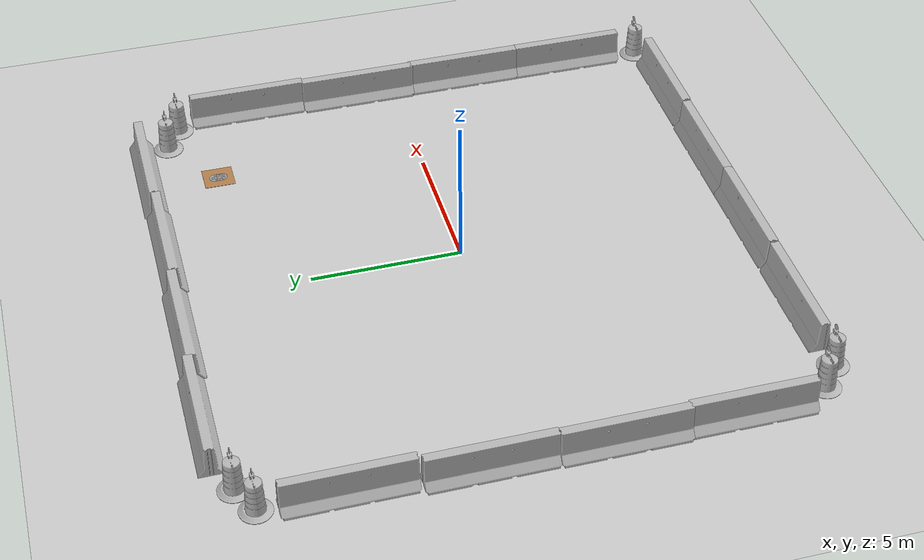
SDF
<sdf version="1.6">
 <world name="default">
  <light name="sun" type="directional">
   <pose>0 0 10 0 -0 0</pose>
   <diffuse>0.8 0.8 0.8 1</diffuse>
   <specular>0.2 0.2 0.2 1</specular>
   <attenuation>
    <range>1000</range>
    <constant>0.9</constant>
    <linear>0.01</linear>
    <quadratic>0.001</quadratic>
   </attenuation>
   <direction>-0.5 0.1 -0.9</direction>
  </light>
  <model name="ground_plane">
   <static>1</static>
   <link name="link">
    <collision name="collision">
     <geometry><plane><normal>0 0 1</normal><size>100 100</size></plane></geometry>
     <surface><friction><ode><mu>100</mu><mu2>50</mu2></ode></friction></surface>
    </collision>
    <visual name="visual">
     <cast_shadows>0</cast_shadows>
     <geometry><plane><normal>0 0 1</normal><size>100 100</size></plane></geometry>
     <material>
      <script><uri>file://media/materials/scripts/gazebo.material</uri><name>Gazebo/Grey</name></script>
     </material>
    </visual>
   </link>
  </model>
  <gravity>0 0 -9.8</gravity>
  <magnetic_field>6e-06 2.3e-05 -4.2e-05</magnetic_field>
  <atmosphere type="adiabatic"/>
  <physics name="default_physics" default="0" type="ode">
   <max_step_size>0.001</max_step_size>
   <real_time_factor>1</real_time_factor>
   <real_time_update_rate>1000</real_time_update_rate>
  </physics>
  <scene><ambient>0.4 0.4 0.4 1</ambient><background>0.7 0.7 0.7 1</background><shadows>1</shadows></scene>
  <spherical_coordinates>
   <surface_model>EARTH_WGS84</surface_model>
   <latitude_deg>0</latitude_deg>
   <longitude_deg>0</longitude_deg>
   <elevation>0</elevation>
   <heading_deg>0</heading_deg>
  </spherical_coordinates>
  <model name="jersey_barrier">
   <static>1</static>
   <link name="link">
    <visual name="visual">
     <geometry><mesh><uri>model://jersey_barrier/meshes/jersey_barrier.dae</uri></mesh></geometry>
    </visual>
    <collision name="upright">
     <pose>0 0 0.5715 0 -0 0</pose>
     <geometry><box><size>4.06542 0.3063 1.143</size></box></geometry>
    </collision>
    <collision name="base">
     <pose>0 0 0.032258 0 -0 0</pose>
     <geometry><box><size>4.06542 0.8107 0.064516</size></box></geometry>
    </collision>
    <collision name="base2">
     <pose>0 0 0.1 0 -0 0</pose>
     <geometry><box><size>4.06542 0.65 0.1</size></box></geometry>
    </collision>
    <collision name="base3">
     <pose>0 0 0.2 0 -0 0</pose>
     <geometry><box><size>4.06542 0.5 0.1</size></box></geometry>
    </collision>
    <collision name="left-angle">
     <pose>0 -0.224 0.2401 0.9 -0 0</pose>
     <geometry><box><size>4.06542 0.5 0.064516</size></box></geometry>
    </collision>
    <collision name="right-angle">
     <pose>0 0.224 0.2401 -0.9 0 0</pose>
     <geometry><box><size>4.06542 0.5 0.064516</size></box></geometry>
    </collision>
   </link>
   <pose>-5.65677 9.4608 0 0 -0 0</pose>
  </model>
  <model name="jersey_barrier_clone">
   <static>1</static>
   <link name="link">
    <visual name="visual">
     <geometry><mesh><uri>model://jersey_barrier/meshes/jersey_barrier.dae</uri></mesh></geometry>
    </visual>
    <collision name="upright">
     <pose>0 0 0.5715 0 -0 0</pose>
     <geometry><box><size>4.06542 0.3063 1.143</size></box></geometry>
    </collision>
    <collision name="base">
     <pose>0 0 0.032258 0 -0 0</pose>
     <geometry><box><size>4.06542 0.8107 0.064516</size></box></geometry>
    </collision>
    <collision name="base2">
     <pose>0 0 0.1 0 -0 0</pose>
     <geometry><box><size>4.06542 0.65 0.1</size></box></geometry>
    </collision>
    <collision name="base3">
     <pose>0 0 0.2 0 -0 0</pose>
     <geometry><box><size>4.06542 0.5 0.1</size></box></geometry>
    </collision>
    <collision name="left-angle">
     <pose>0 -0.224 0.2401 0.9 -0 0</pose>
     <geometry><box><size>4.06542 0.5 0.064516</size></box></geometry>
    </collision>
    <collision name="right-angle">
     <pose>0 0.224 0.2401 -0.9 0 0</pose>
     <geometry><box><size>4.06542 0.5 0.064516</size></box></geometry>
    </collision>
   </link>
   <pose>-1.65987 9.36075 0 0 -0 0</pose>
  </model>
  <model name="jersey_barrier_clone_0">
   <static>1</static>
   <link name="link">
    <visual name="visual">
     <geometry><mesh><uri>model://jersey_barrier/meshes/jersey_barrier.dae</uri></mesh></geometry>
    </visual>
    <collision name="upright">
     <pose>0 0 0.5715 0 -0 0</pose>
     <geometry><box><size>4.06542 0.3063 1.143</size></box></geometry>
    </collision>
    <collision name="base">
     <pose>0 0 0.032258 0 -0 0</pose>
     <geometry><box><size>4.06542 0.8107 0.064516</size></box></geometry>
    </collision>
    <collision name="base2">
     <pose>0 0 0.1 0 -0 0</pose>
     <geometry><box><size>4.06542 0.65 0.1</size></box></geometry>
    </collision>
    <collision name="base3">
     <pose>0 0 0.2 0 -0 0</pose>
     <geometry><box><size>4.06542 0.5 0.1</size></box></geometry>
    </collision>
    <collision name="left-angle">
     <pose>0 -0.224 0.2401 0.9 -0 0</pose>
     <geometry><box><size>4.06542 0.5 0.064516</size></box></geometry>
    </collision>
    <collision name="right-angle">
     <pose>0 0.224 0.2401 -0.9 0 0</pose>
     <geometry><box><size>4.06542 0.5 0.064516</size></box></geometry>
    </collision>
   </link>
   <pose>2.39773 9.29085 0 0 -0 0</pose>
  </model>
  <model name="jersey_barrier_clone_1">
   <static>1</static>
   <link name="link">
    <visual name="visual">
     <geometry><mesh><uri>model://jersey_barrier/meshes/jersey_barrier.dae</uri></mesh></geometry>
    </visual>
    <collision name="upright">
     <pose>0 0 0.5715 0 -0 0</pose>
     <geometry><box><size>4.06542 0.3063 1.143</size></box></geometry>
    </collision>
    <collision name="base">
     <pose>0 0 0.032258 0 -0 0</pose>
     <geometry><box><size>4.06542 0.8107 0.064516</size></box></geometry>
    </collision>
    <collision name="base2">
     <pose>0 0 0.1 0 -0 0</pose>
     <geometry><box><size>4.06542 0.65 0.1</size></box></geometry>
    </collision>
    <collision name="base3">
     <pose>0 0 0.2 0 -0 0</pose>
     <geometry><box><size>4.06542 0.5 0.1</size></box></geometry>
    </collision>
    <collision name="left-angle">
     <pose>0 -0.224 0.2401 0.9 -0 0</pose>
     <geometry><box><size>4.06542 0.5 0.064516</size></box></geometry>
    </collision>
    <collision name="right-angle">
     <pose>0 0.224 0.2401 -0.9 0 0</pose>
     <geometry><box><size>4.06542 0.5 0.064516</size></box></geometry>
    </collision>
   </link>
   <pose>6.45464 9.33993 0 0 -0 0</pose>
  </model>
  <model name="jersey_barrier_clone_3">
   <static>1</static>
   <link name="link">
    <visual name="visual">
     <geometry><mesh><uri>model://jersey_barrier/meshes/jersey_barrier.dae</uri></mesh></geometry>
    </visual>
    <collision name="upright">
     <pose>0 0 0.5715 0 -0 0</pose>
     <geometry><box><size>4.06542 0.3063 1.143</size></box></geometry>
    </collision>
    <collision name="base">
     <pose>0 0 0.032258 0 -0 0</pose>
     <geometry><box><size>4.06542 0.8107 0.064516</size></box></geometry>
    </collision>
    <collision name="base2">
     <pose>0 0 0.1 0 -0 0</pose>
     <geometry><box><size>4.06542 0.65 0.1</size></box></geometry>
    </collision>
    <collision name="base3">
     <pose>0 0 0.2 0 -0 0</pose>
     <geometry><box><size>4.06542 0.5 0.1</size></box></geometry>
    </collision>
    <collision name="left-angle">
     <pose>0 -0.224 0.2401 0.9 -0 0</pose>
     <geometry><box><size>4.06542 0.5 0.064516</size></box></geometry>
    </collision>
    <collision name="right-angle">
     <pose>0 0.224 0.2401 -0.9 0 0</pose>
     <geometry><box><size>4.06542 0.5 0.064516</size></box></geometry>
    </collision>
   </link>
   <pose>9.44656 5.35522 0 0 0 -1.56865</pose>
  </model>
  <model name="jersey_barrier_clone_3_clone">
   <static>1</static>
   <link name="link">
    <visual name="visual">
     <geometry><mesh><uri>model://jersey_barrier/meshes/jersey_barrier.dae</uri></mesh></geometry>
    </visual>
    <collision name="upright">
     <pose>0 0 0.5715 0 -0 0</pose>
     <geometry><box><size>4.06542 0.3063 1.143</size></box></geometry>
    </collision>
    <collision name="base">
     <pose>0 0 0.032258 0 -0 0</pose>
     <geometry><box><size>4.06542 0.8107 0.064516</size></box></geometry>
    </collision>
    <collision name="base2">
     <pose>0 0 0.1 0 -0 0</pose>
     <geometry><box><size>4.06542 0.65 0.1</size></box></geometry>
    </collision>
    <collision name="base3">
     <pose>0 0 0.2 0 -0 0</pose>
     <geometry><box><size>4.06542 0.5 0.1</size></box></geometry>
    </collision>
    <collision name="left-angle">
     <pose>0 -0.224 0.2401 0.9 -0 0</pose>
     <geometry><box><size>4.06542 0.5 0.064516</size></box></geometry>
    </collision>
    <collision name="right-angle">
     <pose>0 0.224 0.2401 -0.9 0 0</pose>
     <geometry><box><size>4.06542 0.5 0.064516</size></box></geometry>
    </collision>
   </link>
   <pose>9.3727 1.33119 0 0 0 -1.56865</pose>
  </model>
  <model name="jersey_barrier_clone_3_clone_0">
   <static>1</static>
   <link name="link">
    <visual name="visual">
     <geometry><mesh><uri>model://jersey_barrier/meshes/jersey_barrier.dae</uri></mesh></geometry>
    </visual>
    <collision name="upright">
     <pose>0 0 0.5715 0 -0 0</pose>
     <geometry><box><size>4.06542 0.3063 1.143</size></box></geometry>
    </collision>
    <collision name="base">
     <pose>0 0 0.032258 0 -0 0</pose>
     <geometry><box><size>4.06542 0.8107 0.064516</size></box></geometry>
    </collision>
    <collision name="base2">
     <pose>0 0 0.1 0 -0 0</pose>
     <geometry><box><size>4.06542 0.65 0.1</size></box></geometry>
    </collision>
    <collision name="base3">
     <pose>0 0 0.2 0 -0 0</pose>
     <geometry><box><size>4.06542 0.5 0.1</size></box></geometry>
    </collision>
    <collision name="left-angle">
     <pose>0 -0.224 0.2401 0.9 -0 0</pose>
     <geometry><box><size>4.06542 0.5 0.064516</size></box></geometry>
    </collision>
    <collision name="right-angle">
     <pose>0 0.224 0.2401 -0.9 0 0</pose>
     <geometry><box><size>4.06542 0.5 0.064516</size></box></geometry>
    </collision>
   </link>
   <pose>9.4315 -2.6268 0 0 0 -1.56865</pose>
  </model>
  <model name="jersey_barrier_clone_3_clone_1">
   <static>1</static>
   <link name="link">
    <visual name="visual">
     <geometry><mesh><uri>model://jersey_barrier/meshes/jersey_barrier.dae</uri></mesh></geometry>
    </visual>
    <collision name="upright">
     <pose>0 0 0.5715 0 -0 0</pose>
     <geometry><box><size>4.06542 0.3063 1.143</size></box></geometry>
    </collision>
    <collision name="base">
     <pose>0 0 0.032258 0 -0 0</pose>
     <geometry><box><size>4.06542 0.8107 0.064516</size></box></geometry>
    </collision>
    <collision name="base2">
     <pose>0 0 0.1 0 -0 0</pose>
     <geometry><box><size>4.06542 0.65 0.1</size></box></geometry>
    </collision>
    <collision name="base3">
     <pose>0 0 0.2 0 -0 0</pose>
     <geometry><box><size>4.06542 0.5 0.1</size></box></geometry>
    </collision>
    <collision name="left-angle">
     <pose>0 -0.224 0.2401 0.9 -0 0</pose>
     <geometry><box><size>4.06542 0.5 0.064516</size></box></geometry>
    </collision>
    <collision name="right-angle">
     <pose>0 0.224 0.2401 -0.9 0 0</pose>
     <geometry><box><size>4.06542 0.5 0.064516</size></box></geometry>
    </collision>
   </link>
   <pose>9.44969 -6.53485 0 0 0 -1.56865</pose>
  </model>
  <model name="jersey_barrier_clone_2_clone">
   <static>1</static>
   <link name="link">
    <visual name="visual">
     <geometry><mesh><uri>model://jersey_barrier/meshes/jersey_barrier.dae</uri></mesh></geometry>
    </visual>
    <collision name="upright">
     <pose>0 0 0.5715 0 -0 0</pose>
     <geometry><box><size>4.06542 0.3063 1.143</size></box></geometry>
    </collision>
    <collision name="base">
     <pose>0 0 0.032258 0 -0 0</pose>
     <geometry><box><size>4.06542 0.8107 0.064516</size></box></geometry>
    </collision>
    <collision name="base2">
     <pose>0 0 0.1 0 -0 0</pose>
     <geometry><box><size>4.06542 0.65 0.1</size></box></geometry>
    </collision>
    <collision name="base3">
     <pose>0 0 0.2 0 -0 0</pose>
     <geometry><box><size>4.06542 0.5 0.1</size></box></geometry>
    </collision>
    <collision name="left-angle">
     <pose>0 -0.224 0.2401 0.9 -0 0</pose>
     <geometry><box><size>4.06542 0.5 0.064516</size></box></geometry>
    </collision>
    <collision name="right-angle">
     <pose>0 0.224 0.2401 -0.9 0 0</pose>
     <geometry><box><size>4.06542 0.5 0.064516</size></box></geometry>
    </collision>
   </link>
   <pose>6.70657 -9.54347 0 0 -0 0</pose>
  </model>
  <model name="jersey_barrier_clone_2_clone_0">
   <static>1</static>
   <link name="link">
    <visual name="visual">
     <geometry><mesh><uri>model://jersey_barrier/meshes/jersey_barrier.dae</uri></mesh></geometry>
    </visual>
    <collision name="upright">
     <pose>0 0 0.5715 0 -0 0</pose>
     <geometry><box><size>4.06542 0.3063 1.143</size></box></geometry>
    </collision>
    <collision name="base">
     <pose>0 0 0.032258 0 -0 0</pose>
     <geometry><box><size>4.06542 0.8107 0.064516</size></box></geometry>
    </collision>
    <collision name="base2">
     <pose>0 0 0.1 0 -0 0</pose>
     <geometry><box><size>4.06542 0.65 0.1</size></box></geometry>
    </collision>
    <collision name="base3">
     <pose>0 0 0.2 0 -0 0</pose>
     <geometry><box><size>4.06542 0.5 0.1</size></box></geometry>
    </collision>
    <collision name="left-angle">
     <pose>0 -0.224 0.2401 0.9 -0 0</pose>
     <geometry><box><size>4.06542 0.5 0.064516</size></box></geometry>
    </collision>
    <collision name="right-angle">
     <pose>0 0.224 0.2401 -0.9 0 0</pose>
     <geometry><box><size>4.06542 0.5 0.064516</size></box></geometry>
    </collision>
   </link>
   <pose>2.59616 -9.50928 0 0 -0 0</pose>
  </model>
  <model name="jersey_barrier_clone_2_clone_1">
   <static>1</static>
   <link name="link">
    <visual name="visual">
     <geometry><mesh><uri>model://jersey_barrier/meshes/jersey_barrier.dae</uri></mesh></geometry>
    </visual>
    <collision name="upright">
     <pose>0 0 0.5715 0 -0 0</pose>
     <geometry><box><size>4.06542 0.3063 1.143</size></box></geometry>
    </collision>
    <collision name="base">
     <pose>0 0 0.032258 0 -0 0</pose>
     <geometry><box><size>4.06542 0.8107 0.064516</size></box></geometry>
    </collision>
    <collision name="base2">
     <pose>0 0 0.1 0 -0 0</pose>
     <geometry><box><size>4.06542 0.65 0.1</size></box></geometry>
    </collision>
    <collision name="base3">
     <pose>0 0 0.2 0 -0 0</pose>
     <geometry><box><size>4.06542 0.5 0.1</size></box></geometry>
    </collision>
    <collision name="left-angle">
     <pose>0 -0.224 0.2401 0.9 -0 0</pose>
     <geometry><box><size>4.06542 0.5 0.064516</size></box></geometry>
    </collision>
    <collision name="right-angle">
     <pose>0 0.224 0.2401 -0.9 0 0</pose>
     <geometry><box><size>4.06542 0.5 0.064516</size></box></geometry>
    </collision>
   </link>
   <pose>-1.33414 -9.50852 0 0 -0 0</pose>
  </model>
  <model name="jersey_barrier_clone_2_clone_2">
   <static>1</static>
   <link name="link">
    <visual name="visual">
     <geometry><mesh><uri>model://jersey_barrier/meshes/jersey_barrier.dae</uri></mesh></geometry>
    </visual>
    <collision name="upright">
     <pose>0 0 0.5715 0 -0 0</pose>
     <geometry><box><size>4.06542 0.3063 1.143</size></box></geometry>
    </collision>
    <collision name="base">
     <pose>0 0 0.032258 0 -0 0</pose>
     <geometry><box><size>4.06542 0.8107 0.064516</size></box></geometry>
    </collision>
    <collision name="base2">
     <pose>0 0 0.1 0 -0 0</pose>
     <geometry><box><size>4.06542 0.65 0.1</size></box></geometry>
    </collision>
    <collision name="base3">
     <pose>0 0 0.2 0 -0 0</pose>
     <geometry><box><size>4.06542 0.5 0.1</size></box></geometry>
    </collision>
    <collision name="left-angle">
     <pose>0 -0.224 0.2401 0.9 -0 0</pose>
     <geometry><box><size>4.06542 0.5 0.064516</size></box></geometry>
    </collision>
    <collision name="right-angle">
     <pose>0 0.224 0.2401 -0.9 0 0</pose>
     <geometry><box><size>4.06542 0.5 0.064516</size></box></geometry>
    </collision>
   </link>
   <pose>-5.44605 -9.49634 0 0 -0 0</pose>
  </model>
  <model name="jersey_barrier_clone_3_clone_1_clone">
   <static>1</static>
   <link name="link">
    <visual name="visual">
     <geometry><mesh><uri>model://jersey_barrier/meshes/jersey_barrier.dae</uri></mesh></geometry>
    </visual>
    <collision name="upright">
     <pose>0 0 0.5715 0 -0 0</pose>
     <geometry><box><size>4.06542 0.3063 1.143</size></box></geometry>
    </collision>
    <collision name="base">
     <pose>0 0 0.032258 0 -0 0</pose>
     <geometry><box><size>4.06542 0.8107 0.064516</size></box></geometry>
    </collision>
    <collision name="base2">
     <pose>0 0 0.1 0 -0 0</pose>
     <geometry><box><size>4.06542 0.65 0.1</size></box></geometry>
    </collision>
    <collision name="base3">
     <pose>0 0 0.2 0 -0 0</pose>
     <geometry><box><size>4.06542 0.5 0.1</size></box></geometry>
    </collision>
    <collision name="left-angle">
     <pose>0 -0.224 0.2401 0.9 -0 0</pose>
     <geometry><box><size>4.06542 0.5 0.064516</size></box></geometry>
    </collision>
    <collision name="right-angle">
     <pose>0 0.224 0.2401 -0.9 0 0</pose>
     <geometry><box><size>4.06542 0.5 0.064516</size></box></geometry>
    </collision>
   </link>
   <pose>-9.54289 -6.33149 0 0 0 -1.56865</pose>
  </model>
  <model name="jersey_barrier_clone_3_clone_1_clone_0">
   <static>1</static>
   <link name="link">
    <visual name="visual">
     <geometry><mesh><uri>model://jersey_barrier/meshes/jersey_barrier.dae</uri></mesh></geometry>
    </visual>
    <collision name="upright">
     <pose>0 0 0.5715 0 -0 0</pose>
     <geometry><box><size>4.06542 0.3063 1.143</size></box></geometry>
    </collision>
    <collision name="base">
     <pose>0 0 0.032258 0 -0 0</pose>
     <geometry><box><size>4.06542 0.8107 0.064516</size></box></geometry>
    </collision>
    <collision name="base2">
     <pose>0 0 0.1 0 -0 0</pose>
     <geometry><box><size>4.06542 0.65 0.1</size></box></geometry>
    </collision>
    <collision name="base3">
     <pose>0 0 0.2 0 -0 0</pose>
     <geometry><box><size>4.06542 0.5 0.1</size></box></geometry>
    </collision>
    <collision name="left-angle">
     <pose>0 -0.224 0.2401 0.9 -0 0</pose>
     <geometry><box><size>4.06542 0.5 0.064516</size></box></geometry>
    </collision>
    <collision name="right-angle">
     <pose>0 0.224 0.2401 -0.9 0 0</pose>
     <geometry><box><size>4.06542 0.5 0.064516</size></box></geometry>
    </collision>
   </link>
   <pose>-9.6221 -2.35336 0 0 0 -1.56865</pose>
  </model>
  <model name="jersey_barrier_clone_3_clone_1_clone_1">
   <static>1</static>
   <link name="link">
    <visual name="visual">
     <geometry><mesh><uri>model://jersey_barrier/meshes/jersey_barrier.dae</uri></mesh></geometry>
    </visual>
    <collision name="upright">
     <pose>0 0 0.5715 0 -0 0</pose>
     <geometry><box><size>4.06542 0.3063 1.143</size></box></geometry>
    </collision>
    <collision name="base">
     <pose>0 0 0.032258 0 -0 0</pose>
     <geometry><box><size>4.06542 0.8107 0.064516</size></box></geometry>
    </collision>
    <collision name="base2">
     <pose>0 0 0.1 0 -0 0</pose>
     <geometry><box><size>4.06542 0.65 0.1</size></box></geometry>
    </collision>
    <collision name="base3">
     <pose>0 0 0.2 0 -0 0</pose>
     <geometry><box><size>4.06542 0.5 0.1</size></box></geometry>
    </collision>
    <collision name="left-angle">
     <pose>0 -0.224 0.2401 0.9 -0 0</pose>
     <geometry><box><size>4.06542 0.5 0.064516</size></box></geometry>
    </collision>
    <collision name="right-angle">
     <pose>0 0.224 0.2401 -0.9 0 0</pose>
     <geometry><box><size>4.06542 0.5 0.064516</size></box></geometry>
    </collision>
   </link>
   <pose>-9.58952 1.69745 0 0 0 -1.56865</pose>
  </model>
  <model name="jersey_barrier_clone_3_clone_1_clone_2">
   <static>1</static>
   <link name="link">
    <visual name="visual">
     <geometry><mesh><uri>model://jersey_barrier/meshes/jersey_barrier.dae</uri></mesh></geometry>
    </visual>
    <collision name="upright">
     <pose>0 0 0.5715 0 -0 0</pose>
     <geometry><box><size>4.06542 0.3063 1.143</size></box></geometry>
    </collision>
    <collision name="base">
     <pose>0 0 0.032258 0 -0 0</pose>
     <geometry><box><size>4.06542 0.8107 0.064516</size></box></geometry>
    </collision>
    <collision name="base2">
     <pose>0 0 0.1 0 -0 0</pose>
     <geometry><box><size>4.06542 0.65 0.1</size></box></geometry>
    </collision>
    <collision name="base3">
     <pose>0 0 0.2 0 -0 0</pose>
     <geometry><box><size>4.06542 0.5 0.1</size></box></geometry>
    </collision>
    <collision name="left-angle">
     <pose>0 -0.224 0.2401 0.9 -0 0</pose>
     <geometry><box><size>4.06542 0.5 0.064516</size></box></geometry>
    </collision>
    <collision name="right-angle">
     <pose>0 0.224 0.2401 -0.9 0 0</pose>
     <geometry><box><size>4.06542 0.5 0.064516</size></box></geometry>
    </collision>
   </link>
   <pose>-9.44715 5.83721 0 0 0 -1.56865</pose>
  </model>
  <model name="Construction Barrel">
   <link name="link">
    <inertial>
     <pose>0 0 0.4 0 -0 0</pose>
     <mass>500</mass>
     <inertia><ixx>51.2096</ixx><iyy>51.2096</iyy><izz>25</izz><ixy>0</ixy><ixz>0</ixz><iyz>0</iyz></inertia>
    </inertial>
    <collision name="collision">
     <geometry><mesh><uri>model://construction_barrel/meshes/construction_barrel.dae</uri></mesh></geometry>
    </collision>
    <visual name="visual">
     <geometry><mesh><uri>model://construction_barrel/meshes/construction_barrel.dae</uri></mesh></geometry>
    </visual>
   </link>
   <pose>9.07447 7.91062 -0 0 -0 -3.4e-05</pose>
  </model>
  <model name="Construction Barrel_0">
   <link name="link">
    <inertial>
     <pose>0 0 0.4 0 -0 0</pose>
     <mass>500</mass>
     <inertia><ixx>51.2096</ixx><iyy>51.2096</iyy><izz>25</izz><ixy>0</ixy><ixz>0</ixz><iyz>0</iyz></inertia>
    </inertial>
    <collision name="collision">
     <geometry><mesh><uri>model://construction_barrel/meshes/construction_barrel.dae</uri></mesh></geometry>
    </collision>
    <visual name="visual">
     <geometry><mesh><uri>model://construction_barrel/meshes/construction_barrel.dae</uri></mesh></geometry>
    </visual>
   </link>
   <pose>8.12832 8.41643 -0 0 -0 -3.3e-05</pose>
  </model>
  <model name="Construction Barrel_1">
   <link name="link">
    <inertial>
     <pose>0 0 0.4 0 -0 0</pose>
     <mass>500</mass>
     <inertia><ixx>51.2096</ixx><iyy>51.2096</iyy><izz>25</izz><ixy>0</ixy><ixz>0</ixz><iyz>0</iyz></inertia>
    </inertial>
    <collision name="collision">
     <geometry><mesh><uri>model://construction_barrel/meshes/construction_barrel.dae</uri></mesh></geometry>
    </collision>
    <visual name="visual">
     <geometry><mesh><uri>model://construction_barrel/meshes/construction_barrel.dae</uri></mesh></geometry>
    </visual>
   </link>
   <pose>-9.27257 8.48398 -1e-06 2e-06 -1e-06 -2.8e-05</pose>
  </model>
  <model name="Construction Barrel_2">
   <link name="link">
    <inertial>
     <pose>0 0 0.4 0 -0 0</pose>
     <mass>500</mass>
     <inertia><ixx>51.2096</ixx><iyy>51.2096</iyy><izz>25</izz><ixy>0</ixy><ixz>0</ixz><iyz>0</iyz></inertia>
    </inertial>
    <collision name="collision">
     <geometry><mesh><uri>model://construction_barrel/meshes/construction_barrel.dae</uri></mesh></geometry>
    </collision>
    <visual name="visual">
     <geometry><mesh><uri>model://construction_barrel/meshes/construction_barrel.dae</uri></mesh></geometry>
    </visual>
   </link>
   <pose>-8.34355 8.93861 -2e-06 7e-06 -4e-06 -3.2e-05</pose>
  </model>
  <model name="Construction Barrel_3">
   <link name="link">
    <inertial>
     <pose>0 0 0.4 0 -0 0</pose>
     <mass>500</mass>
     <inertia><ixx>51.2096</ixx><iyy>51.2096</iyy><izz>25</izz><ixy>0</ixy><ixz>0</ixz><iyz>0</iyz></inertia>
    </inertial>
    <collision name="collision">
     <geometry><mesh><uri>model://construction_barrel/meshes/construction_barrel.dae</uri></mesh></geometry>
    </collision>
    <visual name="visual">
     <geometry><mesh><uri>model://construction_barrel/meshes/construction_barrel.dae</uri></mesh></geometry>
    </visual>
   </link>
   <pose>9.45365 -9.29426 -2e-06 7e-06 -4e-06 -2.8e-05</pose>
  </model>
  <model name="Construction Barrel_4">
   <link name="link">
    <inertial>
     <pose>0 0 0.4 0 -0 0</pose>
     <mass>500</mass>
     <inertia><ixx>51.2096</ixx><iyy>51.2096</iyy><izz>25</izz><ixy>0</ixy><ixz>0</ixz><iyz>0</iyz></inertia>
    </inertial>
    <collision name="collision">
     <geometry><mesh><uri>model://construction_barrel/meshes/construction_barrel.dae</uri></mesh></geometry>
    </collision>
    <visual name="visual">
     <geometry><mesh><uri>model://construction_barrel/meshes/construction_barrel.dae</uri></mesh></geometry>
    </visual>
   </link>
   <pose>-8.13312 -9.57169 -1e-06 4e-06 -1e-06 -0.00044</pose>
  </model>
  <model name="Construction Barrel_5">
   <link name="link">
    <inertial>
     <pose>0 0 0.4 0 -0 0</pose>
     <mass>500</mass>
     <inertia><ixx>51.2096</ixx><iyy>51.2096</iyy><izz>25</izz><ixy>0</ixy><ixz>0</ixz><iyz>0</iyz></inertia>
    </inertial>
    <collision name="collision">
     <geometry><mesh><uri>model://construction_barrel/meshes/construction_barrel.dae</uri></mesh></geometry>
    </collision>
    <visual name="visual">
     <geometry><mesh><uri>model://construction_barrel/meshes/construction_barrel.dae</uri></mesh></geometry>
    </visual>
   </link>
   <pose>-8.93841 -8.96 -4e-06 -5e-06 -7e-06 -0.0003</pose>
  </model>
  <audio><device>default</device></audio>
  <model name="wooden_board">
   <link name="base">
    <pose>-0.787559 0.570311 0.00523 0 -0 0</pose>
    <inertial>
     <mass>8.36397</mass>
     <inertia><ixx>0.742445</ixx><ixy>0</ixy><ixz>0</ixz><iyy>0.67448</iyy><iyz>0</iyz><izz>1.41677</izz></inertia>
    </inertial>
    <visual name="visual">
     <geometry><box><size>0.983659 1.03204 0.01046</size></box></geometry>
     <material>
      <script><uri>file://media/materials/scripts/gazebo.material</uri><name>Gazebo/Wood</name></script>
     </material>
    </visual>
    <visual name="tee_nut_1">
     <pose>0 -0.116 0 0 -0 0</pose>
     <geometry><cylinder><radius>0.190705</radius><length>0.0105646</length></cylinder></geometry>
     <material>
      <script><uri>file://media/materials/scripts/gazebo.material</uri><name>Gazebo/Grey</name></script>
     </material>
    </visual>
    <visual name="tee_nut_2">
     <pose>0 -0.038 0 0 -0 0</pose>
     <geometry><cylinder><radius>0.190705</radius><length>0.0105646</length></cylinder></geometry>
     <material>
      <script><uri>file://media/materials/scripts/gazebo.material</uri><name>Gazebo/Grey</name></script>
     </material>
    </visual>
    <visual name="tee_nut_3">
     <pose>0 0.038 0 0 -0 0</pose>
     <geometry><cylinder><radius>0.190705</radius><length>0.0105646</length></cylinder></geometry>
     <material>
      <script><uri>file://media/materials/scripts/gazebo.material</uri><name>Gazebo/Grey</name></script>
     </material>
    </visual>
    <visual name="tee_nut_4">
     <pose>0 0.116 0 0 -0 0</pose>
     <geometry><cylinder><radius>0.190705</radius><length>0.0105646</length></cylinder></geometry>
     <material>
      <script><uri>file://media/materials/scripts/gazebo.material</uri><name>Gazebo/Grey</name></script>
     </material>
    </visual>
    <collision name="collision">
     <geometry><box><size>0.983659 1.03204 0.01046</size></box></geometry>
     <surface>
      <friction>
       <ode><mu>1</mu><mu2>1</mu2><fdir1>0 0 0</fdir1><slip1>0</slip1><slip2>0</slip2></ode>
       <torsional>
        <coefficient>1</coefficient>
        <patch_radius>0</patch_radius>
        <surface_radius>0.01</surface_radius>
        <use_patch_radius>0</use_patch_radius>
        <ode><slip>0</slip></ode>
       </torsional>
      </friction>
      <bounce><restitution_coefficient>0</restitution_coefficient><threshold>1e+06</threshold></bounce>
      <contact>
       <collide_without_contact>0</collide_without_contact>
       <collide_without_contact_bitmask>1</collide_without_contact_bitmask>
       <collide_bitmask>1</collide_bitmask>
       <ode>
        <soft_cfm>0</soft_cfm>
        <soft_erp>0.2</soft_erp>
        <kp>100000</kp>
        <kd>100</kd>
        <max_vel>100</max_vel>
        <min_depth>0.001</min_depth>
       </ode>
       <bullet>
        <split_impulse>1</split_impulse>
        <split_impulse_penetration_threshold>-0.01</split_impulse_penetration_threshold>
        <soft_cfm>0</soft_cfm>
        <soft_erp>0.2</soft_erp>
        <kp>100000</kp>
        <kd>100</kd>
       </bullet>
      </contact>
     </surface>
    </collision>
   </link>
   <static>0</static>
   <pose>6.86767 6.43088 -0.001007 0 -0 0</pose>
  </model>
 </world>
</sdf>
